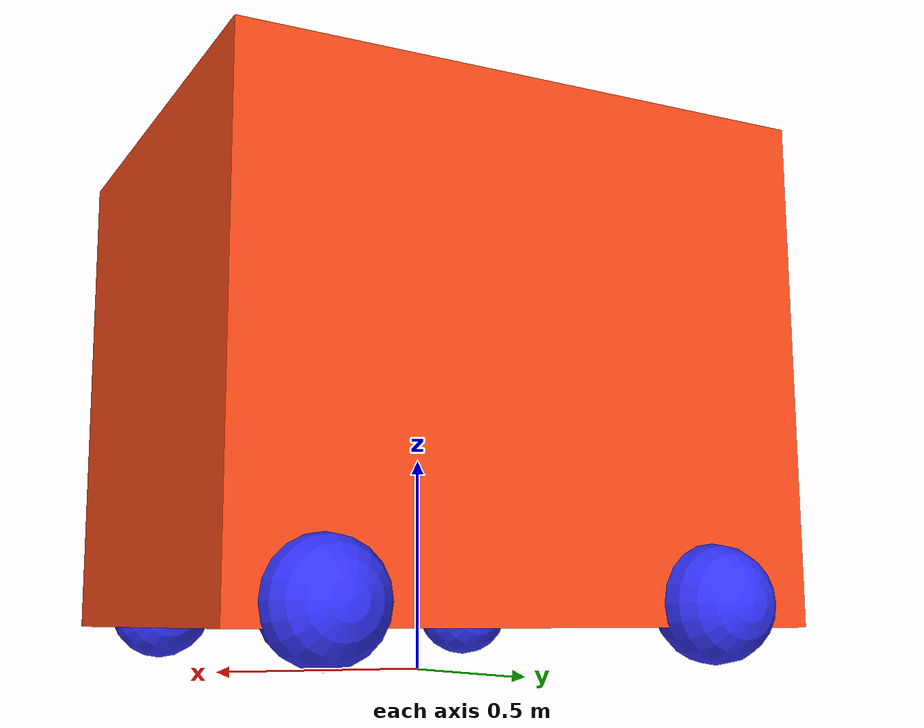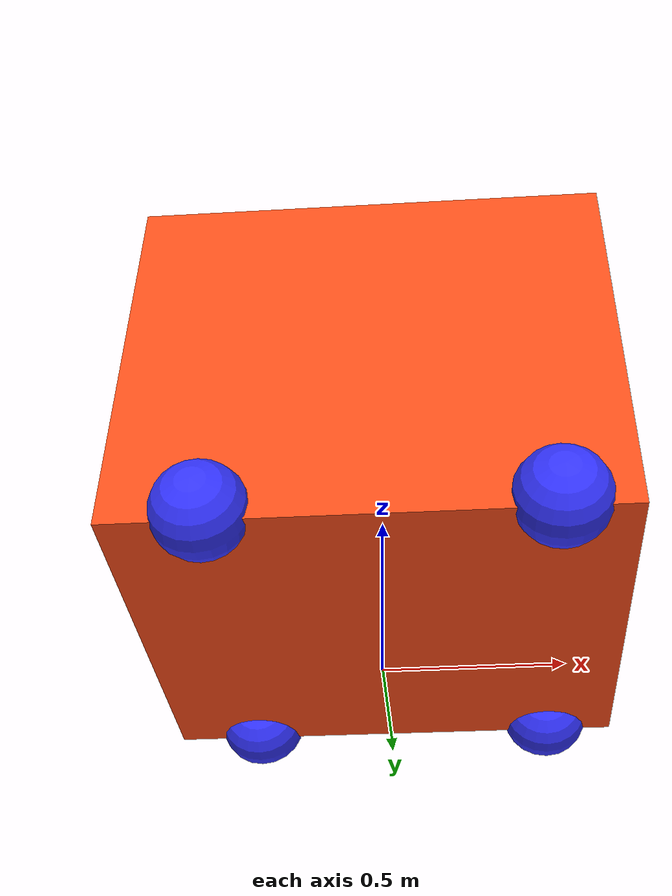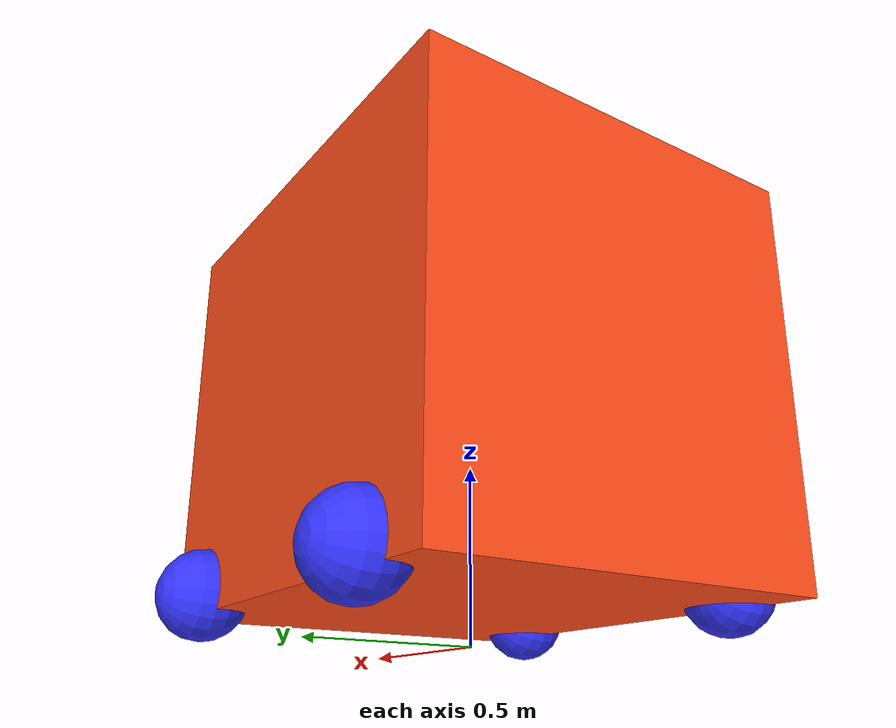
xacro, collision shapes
<?xml version="1.0"?>
<robot xmlns:xacro="http://www.ros.org/wiki/xacro" >
    <xacro:include filename="inertial_macros.xacro"/>

    <xacro:property name="chassis_length" value="1.36"/>
    <xacro:property name="chassis_width" value="1.17"/>
    <xacro:property name="chassis_height" value="1.17"/>
    <xacro:property name="chassis_mass" value="1.0"/>
    <xacro:property name="wheel_radius" value="0.26"/>
    <xacro:property name="wheel_thickness" value="0.13"/>
    <xacro:property name="wheel_mass" value="0.05"/>
    <xacro:property name="wheel_offset_x" value="0.26"/>
    <xacro:property name="wheel_offset_y" value="0.13"/>
    <xacro:property name="wheel_offset_z" value="0.26"/>

    <material name="white">
        <color rgba="1 1 1 1" />
    </material>

    <material name="orange">
        <color rgba="1 0.3 0.1 1"/>
    </material>

    <material name="blue">
        <color rgba="0.2 0.2 1 1"/>
    </material>

    <material name="black">
        <color rgba="0 0 0 1"/>
    </material>

    <material name="red">
        <color rgba="1 0 0 1"/>
    </material>

    <!-- BASE LINK -->

    <link name="base_link">

    </link>

    <!-- BASE_FOOTPRINT LINK -->

    <joint name="base_footprint_joint" type="fixed">
        <parent link="base_link"/>
        <child link="base_footprint"/>
        <origin xyz="0 0 0" rpy="0 0 0"/>
    </joint>

    <link name="base_footprint">
    </link>

    <!-- CHASSIS LINK -->

    <joint name="chassis_joint" type="fixed">
        <parent link="base_link"/>
        <child link="chassis"/>
        <origin xyz="0 0 ${(chassis_height/2)}"/>
    </joint>

    <link name="chassis">
        <visual>
            <origin xyz="-${chassis_length/4} -${chassis_width/8} -${(chassis_height/2) - wheel_offset_z}" rpy="${pi/2} 0 ${pi/2}"/>
            <geometry>
                <mesh filename="package://trailblazer_description/meshes/body.stl" scale="0.001 0.001 0.001" />
            </geometry>
            <material name="orange"/>
        </visual>
        <collision>
            <origin xyz="0 0 0.1"/>
            <geometry>
                <box size="${chassis_length} ${chassis_width} ${chassis_height}"/>
            </geometry>
        </collision>
        <xacro:inertial_box mass="20" x="${chassis_length}" y="${chassis_width}" z="${chassis_height}">
            <origin xyz="0 0 0"/>
        </xacro:inertial_box>
    </link>

    <gazebo reference="chassis">
        <material>Gazebo/Orange</material>
    </gazebo>

    <!-- LEFT WHEEL LINK -->

    <joint name="left_wheel_back_joint" type="continuous">
        <parent link="base_link"/>
        <child link="left_wheel_back"/>
        <origin xyz="-${(chassis_length/4) + 0.085} ${chassis_width/2} ${(wheel_offset_z/2) + 0.02}" rpy="-${pi/2} 0 0" />
        <axis xyz="0 0 1"/>
        <mimic joint="left_wheel_front_joint" multiplier="1" offset="0" />
        <limit effort="50.0" velocity="5.0"/>
    </joint>

    <link name="left_wheel_back">
        <visual>
            <origin xyz="${0.061} -0.01 -0.1" rpy="0 0 0"/>
            <geometry>
                <mesh filename="package://trailblazer_description/meshes/wheel_left.stl" scale="0.001 0.001 0.001" />
            </geometry>
            <material name="blue"/>
        </visual>
        <collision>
            <geometry>
                <sphere radius="${wheel_thickness}"/>
            </geometry>
        </collision>
        <xacro:inertial_cylinder mass="${wheel_mass}" length="${wheel_thickness}" radius="${wheel_radius}">
            <origin xyz="0 0 0" rpy="0 0 0"/>
        </xacro:inertial_cylinder>
    </link>

    <gazebo reference="left_wheel">
        <material>Gazebo/Blue</material>
    </gazebo>

    <joint name="left_wheel_front_joint" type="continuous">
        <parent link="base_link"/>
        <child link="left_wheel_front"/>
        <origin xyz="${(chassis_length/4) + 0.14} ${chassis_width/2} ${(wheel_offset_z/2) + 0.02}" rpy="-${pi/2} 0 0" />
        <axis xyz="0 0 1"/>
        <limit effort="50.0" velocity="5.0"/>
    </joint>

    <link name="left_wheel_front">
        <visual>
            <origin xyz="${0.061} -0.01 -0.1" rpy="0 0 0"/>
            <geometry>
                <mesh filename="package://trailblazer_description/meshes/wheel_left.stl" scale="0.001 0.001 0.001" />
            </geometry>
            <material name="blue"/>
        </visual>
        <collision>
            <geometry>
                <sphere radius="${wheel_thickness}"/>
            </geometry>
        </collision>
        <xacro:inertial_cylinder mass="${wheel_mass}" length="${wheel_thickness}" radius="${wheel_radius}">
            <origin xyz="0 0 0" rpy="0 0 0"/>
        </xacro:inertial_cylinder>
    </link>

    <gazebo reference="left_wheel">
        <material>Gazebo/Blue</material>
    </gazebo>

    <!-- RIGHT WHEEL LINK -->

    <joint name="right_wheel_back_joint" type="continuous">
        <parent link="base_link"/>
        <child link="right_wheel_back"/>
        <origin xyz="-${(chassis_length/4) + 0.080} -${chassis_width/2 - 0.025} ${(wheel_offset_z/2) + 0.02}" rpy="${pi/2} 0 0" />
        <axis xyz="0 0 -1"/>
        <mimic joint="right_wheel_front_joint" multiplier="1" offset="0" />
        <limit effort="50.0" velocity="5.0"/>
    </joint>

    <link name="right_wheel_back">
        <visual>
            <origin xyz="${0.061} -0.01 -0.1" rpy="0 0 0"/>
            <geometry>
                <mesh filename="package://trailblazer_description/meshes/wheel_left.stl" scale="0.001 0.001 0.001" />
            </geometry>
            <material name="blue"/>
        </visual>
        <collision>
            <geometry>
                <sphere radius="${wheel_thickness}"/>
            </geometry>
        </collision>
        <xacro:inertial_cylinder mass="${wheel_mass}" length="${wheel_thickness}" radius="${wheel_radius}">
            <origin xyz="0 0 0" rpy="0 0 0"/>
        </xacro:inertial_cylinder>
    </link>

    <gazebo reference="left_wheel">
        <material>Gazebo/Blue</material>
    </gazebo>

    <joint name="right_wheel_front_joint" type="continuous">
        <parent link="base_link"/>
        <child link="right_wheel_front"/>
        <origin xyz="${(chassis_length/4) + 0.14} -${chassis_width/2 - 0.025} ${(wheel_offset_z/2) + 0.02}" rpy="${pi/2} 0 0" />
        <axis xyz="0 0 -1"/>
        <limit effort="50.0" velocity="5.0"/>
    </joint>

    <link name="right_wheel_front">
        <visual>
            <origin xyz="${0.061} -0.01 -0.1" rpy="0 0 0"/>
            <geometry>
                <mesh filename="package://trailblazer_description/meshes/wheel_left.stl" scale="0.001 0.001 0.001" />
            </geometry>
            <material name="blue"/>
        </visual>
        <collision>
            <geometry>
                <sphere radius="${wheel_thickness}"/>
            </geometry>
        </collision>
        <xacro:inertial_cylinder mass="${wheel_mass}" length="${wheel_thickness}" radius="${wheel_radius}">
            <origin xyz="0 0 0" rpy="0 0 0"/>
        </xacro:inertial_cylinder>
    </link>

    <gazebo reference="left_wheel">
        <material>Gazebo/Blue</material>
    </gazebo>
</robot>

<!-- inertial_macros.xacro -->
<robot xmlns:xacro="http://www.ros.org/wiki/xacro" >

    <!-- Specify some standard inertial calculations https://en.wikipedia.org/wiki/List_of_moments_of_inertia -->
    <!-- These make use of xacro's mathematical functionality -->

    <xacro:macro name="inertial_sphere" params="mass radius *origin">
        <inertial>
            <xacro:insert_block name="origin"/>
            <mass value="${mass}" />
            <inertia ixx="${(2/5) * mass * (radius*radius)}" ixy="0.0" ixz="0.0"
                    iyy="${(2/5) * mass * (radius*radius)}" iyz="0.0"
                    izz="${(2/5) * mass * (radius*radius)}" />
        </inertial>
    </xacro:macro>

    <xacro:macro name="inertial_box" params="mass x y z *origin">
        <inertial>
            <xacro:insert_block name="origin"/>
            <mass value="${mass}" />
            <inertia ixx="${(1/12) * mass * (y*y+z*z)}" ixy="0.0" ixz="0.0"
                    iyy="${(1/12) * mass * (x*x+z*z)}" iyz="0.0"
                    izz="${(1/12) * mass * (x*x+y*y)}" />
        </inertial>
    </xacro:macro>

    <xacro:macro name="inertial_cylinder" params="mass length radius *origin">
        <inertial>
            <xacro:insert_block name="origin"/>
            <mass value="${mass}" />
            <inertia ixx="${(1/12) * mass * (3*radius*radius + length*length)}" ixy="0.0" ixz="0.0"
                    iyy="${(1/12) * mass * (3*radius*radius + length*length)}" iyz="0.0"
                    izz="${(1/2) * mass * (radius*radius)}" />
        </inertial>
    </xacro:macro>

</robot>
